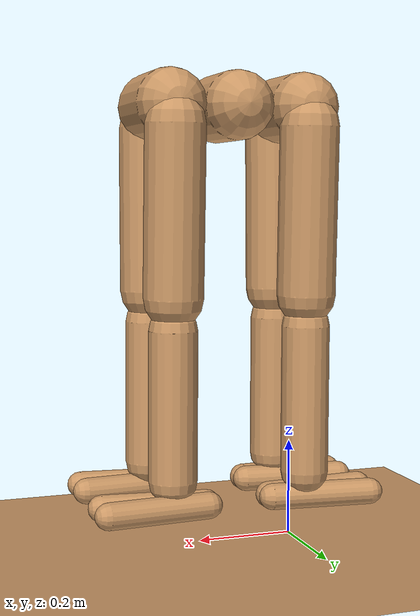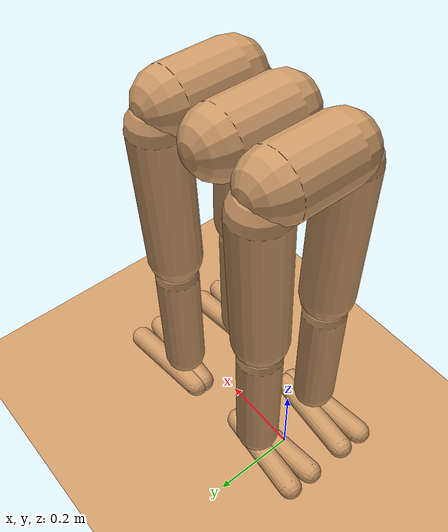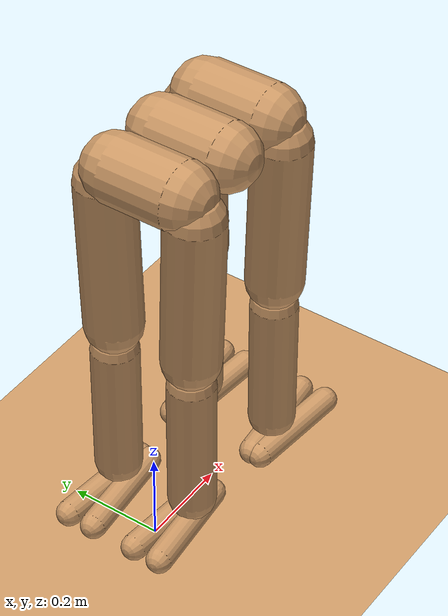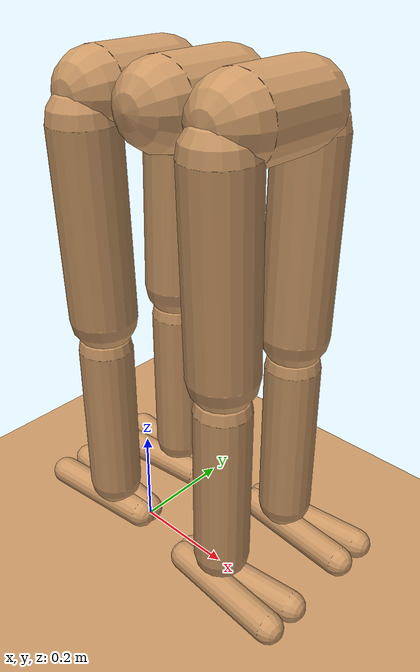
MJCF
<mujoco model="centaur">
    <compiler angle="degree" inertiafromgeom="true"/>
    <default>
        <joint armature="1" damping="1" limited="true"/>
        <geom conaffinity="1" condim="3" friction="0.8 0.1 0.1" contype="1" margin="0.001" material="geom" rgba="0.8 0.6 .4 1"/>
        <motor ctrllimited="true" ctrlrange="-.4 .4"/>
    </default>
    <option integrator="RK4" iterations="50" solver="PGS" timestep="0.003">
    </option>
    <size nkey="5" nuser_geom="1"/>
    <visual>
        <map fogstart="3" fogend="5" force="0.1"/>
        <quality shadowsize="2048"/>
    </visual>
    <asset>
        <texture type="skybox" builtin="gradient" width="100" height="100" rgb1=".4 .6 .8"
            rgb2="0 0 0"/>
        <texture name="texgeom" type="cube" builtin="flat" mark="cross" width="127" height="1278"
            rgb1="0.8 0.6 0.4" rgb2="0.8 0.6 0.4" markrgb="1 1 1" random="0.01"/>
        <texture name="texplane" type="2d" builtin="checker" rgb1=".2 .3 .4" rgb2=".1 0.15 0.2"
            width="100" height="100"/>

        <material name='MatPlane' reflectance='0.5' texture="texplane" texrepeat="1 1" texuniform="true"/>
        <material name='geom' texture="texgeom" texuniform="true"/>
    </asset>
    <worldbody>
        <geom name='floor' pos='0 0 0' size='10 10 0.125' type='plane' material="MatPlane" condim='3'/>
                <body name="b_pelvis" pos="0 0 0.9" quat="1.000 0 -0.002 0">
                    <joint armature="0" damping="0" limited="false" name="root" pos="0 0 0" stiffness="0" type="free"/>
                    <geom fromto="0 -.07 0 0 .07 0" name="b_torso1" size="0.07" type="capsule"/>
                    <body name="b_right_thigh" pos="0 -0.1 -0.04">
                        <joint armature="0.01" axis="1 0 0" damping="5" name="b_right_hip_x" pos="0 0 0" range="-5 30" stiffness="10" type="hinge"/>
                        <joint armature="0.01" axis="0 0 1" damping="5" name="b_right_hip_z" pos="0 0 0" range="-60 35" stiffness="10" type="hinge"/>
                        <joint armature="0.01" axis="0 1 0" damping="5" name="b_right_hip_y" pos="0 0 0" range="-120 20" stiffness="20" type="hinge"/>
                        <geom fromto="0 0 0 0 0.01 -.34" name="b_right_thigh1" size="0.06" type="capsule"/>
                        <body name="b_right_shin" pos="0 0.01 -0.403">
                            <joint armature="0.0060" axis="0 -1 0" name="b_right_knee" pos="0 0 .02" range="2 160" stiffness="1" type="hinge"/>
                            <geom fromto="0 0 0 0 0 -.3" name="b_right_shin1" size="0.049" type="capsule"/>
                            <body name="b_right_foot" pos="0 0 -0.35">
                                 <joint name='b_right_ankle' type='hinge' pos='0 0 0.08' axis='0 1 0'   range='-50 50' stiffness='4' armature='0.0008' />
                                <geom name='b_right_foot_cap1' type='capsule' fromto='.07 0.02 0 -.14 0.04 0'  size='0.027' />
                                <geom name='b_right_foot_cap2' type='capsule' fromto='.07 0 0 -.14  -.02 0'  size='0.027' />
                            </body>
                        </body>
                    </body>
                    <body name="b_left_thigh" pos="0 0.1 -0.04">
                        <joint armature="0.01" axis="-1 0 0" damping="5" name="b_left_hip_x" pos="0 0 0" range="-5 30" stiffness="10" type="hinge"/>
                        <joint armature="0.01" axis="0 0 -1" damping="5" name="b_left_hip_z" pos="0 0 0" range="-60 35" stiffness="10" type="hinge"/>
                        <joint armature="0.01" axis="0 1 0" damping="5" name="b_left_hip_y" pos="0 0 0" range="-120 20" stiffness="20" type="hinge"/>
                        <geom fromto="0 0 0 0 -0.01 -.34" name="b_left_thigh1" size="0.06" type="capsule"/>
                        <body name="b_left_shin" pos="0 -0.01 -0.403">
                            <joint armature="0.0060" axis="0 -1 0" name="b_left_knee" pos="0 0 .02" range="2 160" stiffness="1" type="hinge"/>
                            <geom fromto="0 0 0 0 0 -.3" name="left_shin1" size="0.049" type="capsule"/>
                            <body name="b_left_foot" pos="0 0 -0.35">
                                <joint name='b_left_ankle' type='hinge' pos='0 0 0.08' axis='0 1 0'   range='-50 50'  stiffness='4' armature='0.0008' />
                                <geom name='b_left_foot_cap1' type='capsule' fromto='.07 -.02 0 -.14 -.04 0'  size='0.027' />
                                <geom name='b_left_foot_cap2' type='capsule' fromto='.07 0 0 -.14  0.02 0'  size='0.027' />
                            </body>
                        </body>
                    </body>
                    <body name="m_pelvis" pos="0.14 0 0" quat="1.000 0 -0.002 0">
                        <geom fromto="0 -.07 0 0 .07 0" name="m_torso1" size="0.07" type="capsule"/>
                    </body>
                    <body name="f_pelvis" pos="0.28 0 0" quat="1.000 0 -0.002 0">
                        <geom fromto="0 -.07 0 0 .07 0" name="f_torso1" size="0.07" type="capsule"/>
                        <body name="f_right_thigh" pos="0 -0.1 -0.04">
                            <joint armature="0.01" axis="1 0 0" damping="5" name="f_right_hip_x" pos="0 0 0" range="-30 5" stiffness="10" type="hinge"/>
                            <joint armature="0.01" axis="0 0 1" damping="5" name="f_right_hip_z" pos="0 0 0" range="-60 35" stiffness="10" type="hinge"/>
                            <joint armature="0.01" axis="0 1 0" damping="5" name="f_right_hip_y" pos="0 0 0" range="-120 20" stiffness="20" type="hinge"/>
                            <geom fromto="0 0 0 0 0.01 -.34" name="f_right_thigh1" size="0.06" type="capsule"/>
                            <body name="f_right_shin" pos="0 0.01 -0.403">
                                <joint armature="0.0060" axis="0 -1 0" name="f_right_knee" pos="0 0 .02" range="-160 2" stiffness="1" type="hinge"/>
                                <geom fromto="0 0 0 0 0 -.3" name="f_right_shin1" size="0.049" type="capsule"/>
                                <body name="f_right_foot" pos="0 0 -0.35">
                                     <joint name='f_right_ankle' type='hinge' pos='0 0 0.08' axis='0 1 0'   range='-50 50' stiffness='4' armature='0.0008' />
                                    <geom name='f_right_foot_cap1' type='capsule' fromto='-.07 -0.02 0 0.14 -0.04 0'  size='0.027' />
                                    <geom name='f_right_foot_cap2' type='capsule' fromto='-.07 0 0 0.14  0.02 0'  size='0.027' />
                                </body>
                            </body>
                        </body>
                        <body name="f_left_thigh" pos="0 0.1 -0.04">
                            <joint armature="0.01" axis="-1 0 0" damping="5" name="f_left_hip_x" pos="0 0 0" range="-30 5" stiffness="10" type="hinge"/>
                            <joint armature="0.01" axis="0 0 -1" damping="5" name="f_left_hip_z" pos="0 0 0" range="-60 35" stiffness="10" type="hinge"/>
                            <joint armature="0.01" axis="0 1 0" damping="5" name="f_left_hip_y" pos="0 0 0" range="-120 20" stiffness="20" type="hinge"/>
                            <geom fromto="0 0 0 0 -0.01 -.34" name="f_left_thigh1" size="0.06" type="capsule"/>
                            <body name="f_left_shin" pos="0 -0.01 -0.403">
                                <joint armature="0.0060" axis="0 -1 0" name="f_left_knee" pos="0 0 .02" range="-160 2" stiffness="1" type="hinge"/>
                                <geom fromto="0 0 0 0 0 -.3" name="f_left_shin1" size="0.049" type="capsule"/>
                                <body name="f_left_foot" pos="0 0 -0.35">
                                    <joint name='f_left_ankle' type='hinge' pos='0 0 0.08' axis='0 1 0'   range='-50 50'  stiffness='4' armature='0.0008' />
                                    <geom name='f_left_foot_cap1' type='capsule' fromto='-.07 0.02 0 0.14 0.04 0'  size='0.027' />
                                    <geom name='f_left_foot_cap2' type='capsule' fromto='-.07 0 0 0.14  -0.02 0'  size='0.027' />
                                </body>
                            </body>
                        </body>
                     </body>
                </body>
    </worldbody>
    <tendon>
        <fixed name="b_left_hipknee">
            <joint coef="-1" joint="b_left_hip_y"/>
            <joint coef="1" joint="b_left_knee"/>
        </fixed>
        <fixed name="b_left_kneefoot">
            <joint coef="-1" joint="b_left_knee"/>
            <joint coef="1" joint="b_left_ankle"/>
        </fixed>
        <fixed name="b_right_hipknee">
            <joint coef="-1" joint="b_right_hip_y"/>
            <joint coef="1" joint="b_right_knee"/>
        </fixed>
        <fixed name="b_right_kneefoot">
            <joint coef="-1" joint="b_right_knee"/>
            <joint coef="1" joint="b_right_ankle"/>
        </fixed>

        <fixed name="f_left_hipknee">
            <joint coef="-1" joint="f_left_hip_y"/>
            <joint coef="1" joint="f_left_knee"/>
        </fixed>
        <fixed name="f_left_kneefoot">
            <joint coef="-1" joint="f_left_knee"/>
            <joint coef="1" joint="f_left_ankle"/>
        </fixed>
        <fixed name="f_right_hipknee">
            <joint coef="-1" joint="f_right_hip_y"/>
            <joint coef="1" joint="f_right_knee"/>
        </fixed>
        <fixed name="f_right_kneefoot">
            <joint coef="-1" joint="f_right_knee"/>
            <joint coef="1" joint="f_right_ankle"/>
        </fixed>

    </tendon>
    <actuator><!-- this section is not supported, same constants in code -->
        <motor gear="50" joint="b_right_hip_x" name="b_right_hip_x"/>
        <motor gear="50" joint="b_right_hip_z" name="b_right_hip_z"/>
        <motor gear="150" joint="b_right_hip_y" name="b_right_hip_y"/>
        <motor gear="100" joint="b_right_knee" name="b_right_knee"/>
        <motor gear='100' joint="b_right_ankle" name="b_right_ankle"/>
        <motor gear="50" joint="b_left_hip_x" name="b_left_hip_x"/>
        <motor gear="50" joint="b_left_hip_z" name="b_left_hip_z"/>
        <motor gear="150" joint="b_left_hip_y" name="b_left_hip_y"/>
        <motor gear="100" joint="b_left_knee" name="b_left_knee"/>
        <motor gear='100' joint="b_left_ankle" name="b_left_ankle"/>

        <motor gear="50" joint="f_right_hip_x" name="f_right_hip_x"/>
        <motor gear="50" joint="f_right_hip_z" name="f_right_hip_z"/>
        <motor gear="150" joint="f_right_hip_y" name="f_right_hip_y"/>
        <motor gear="100" joint="f_right_knee" name="f_right_knee"/>
        <motor gear='100' joint="f_right_ankle" name="f_right_ankle"/>
        <motor gear="50" joint="f_left_hip_x" name="f_left_hip_x"/>
        <motor gear="50" joint="f_left_hip_z" name="f_left_hip_z"/>
        <motor gear="150" joint="f_left_hip_y" name="f_left_hip_y"/>
        <motor gear="100" joint="f_left_knee" name="f_left_knee"/>
        <motor gear='100' joint="f_left_ankle" name="f_left_ankle"/>

    </actuator>
</mujoco>
